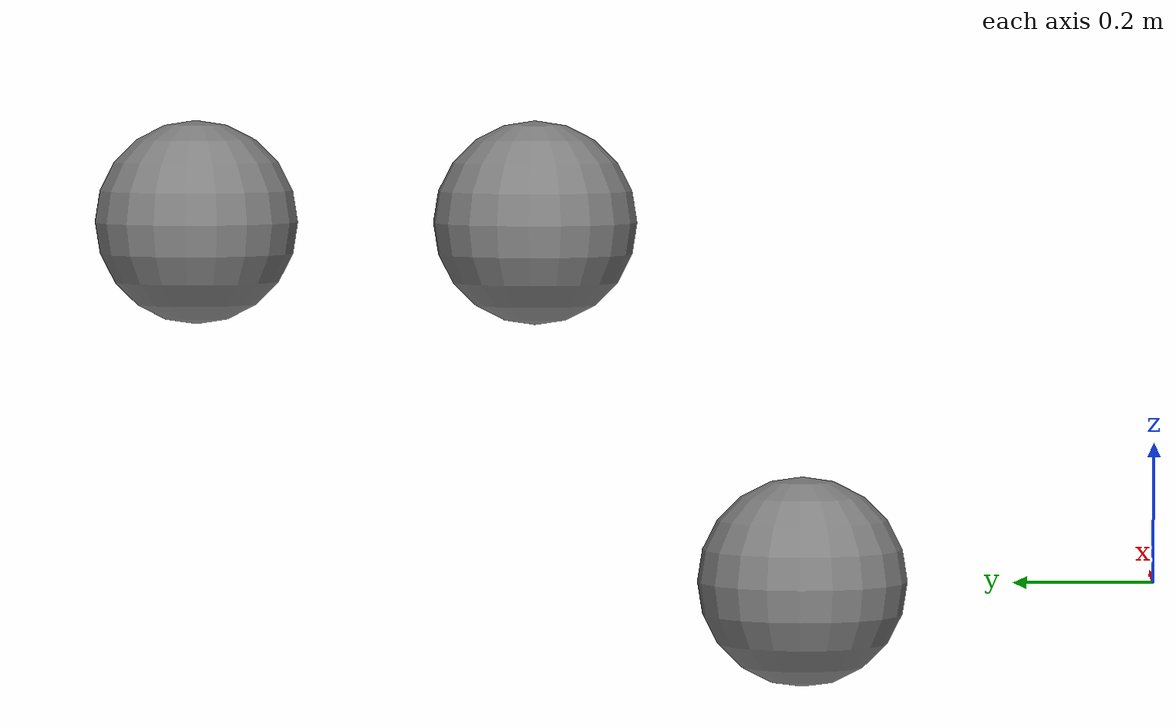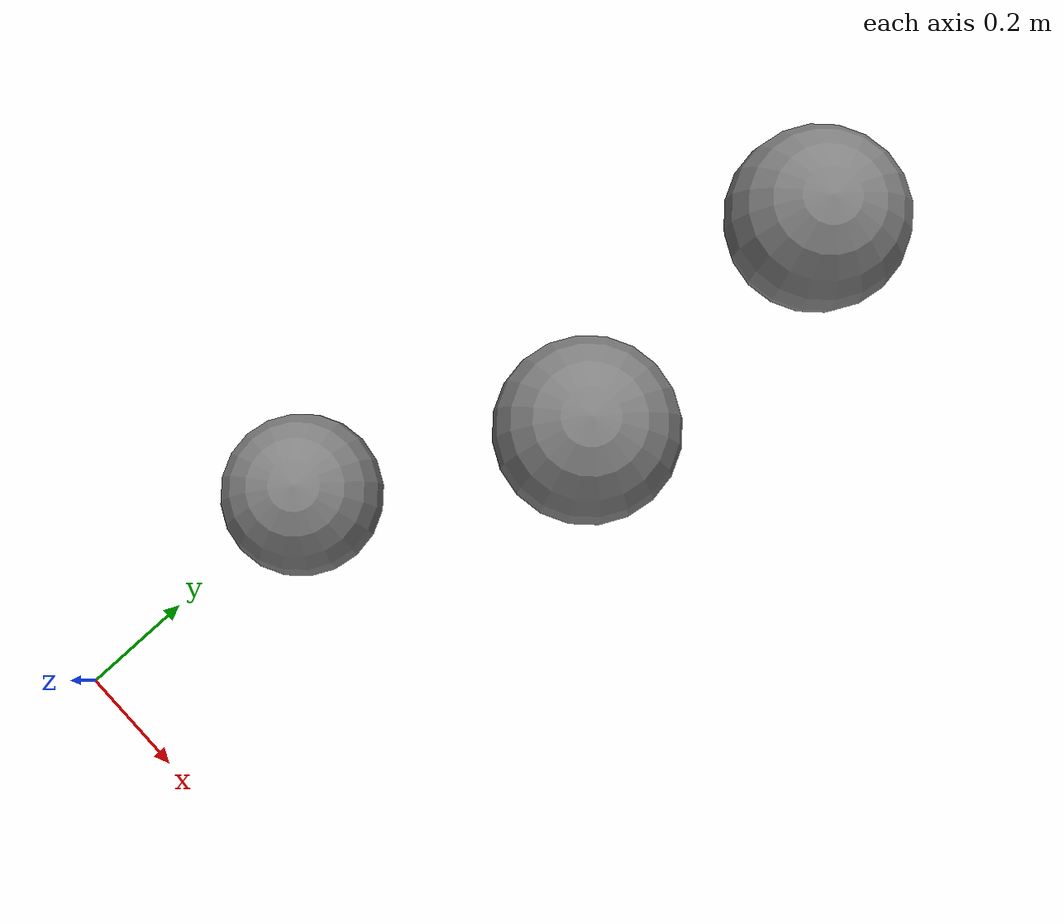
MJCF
<mujoco model="revolute">
  <option timestep="0.02" solver="CG" iterations="6" ls_iterations="6"/>
  <compiler autolimits="true"/>
  <default>
    <geom contype="0" conaffinity="0"/>
    <joint damping="20"/>
  </default>
  <worldbody>
    <body>
      <joint axis="1 0 0" type="ball" range="0 10"/>
      <geom pos="0 0.5 0" size=".15" mass="1" type="sphere"/>
      <body pos="0.3 0.4 0.5">
        <joint axis="1 0 0" type="hinge" range="-20 20"/>
        <joint axis="0 1 0" type="hinge" range="-20 20"/>
        <geom pos="0 0.5 0" size=".15" mass="2" type="sphere"/>
        <body pos="0 0.5 0">
          <joint axis="1 0 0" type="hinge" range="-30 30"/>
          <geom pos="0 0.5 0" size=".15" mass="3" type="sphere"/>
        </body>
      </body>
    </body>
  </worldbody>
</mujoco>
